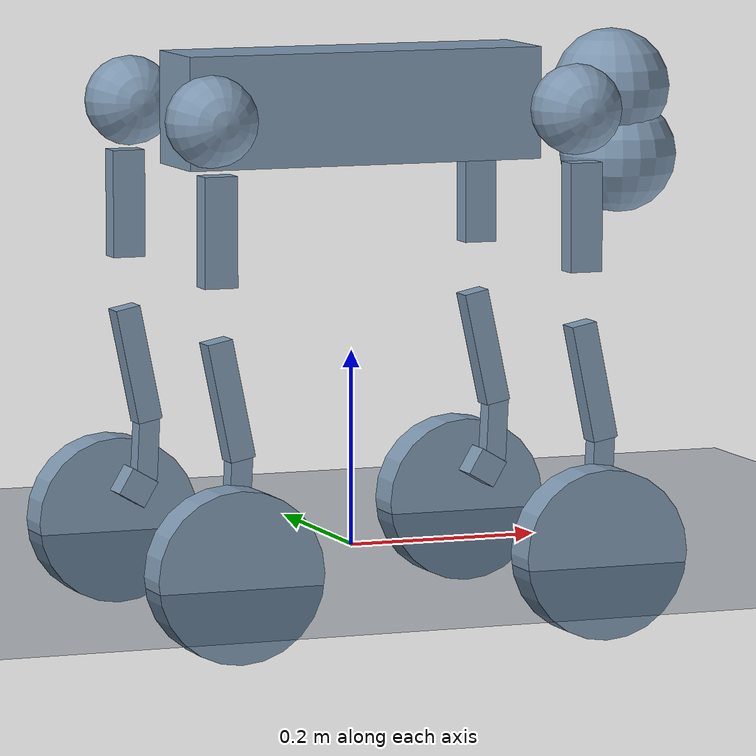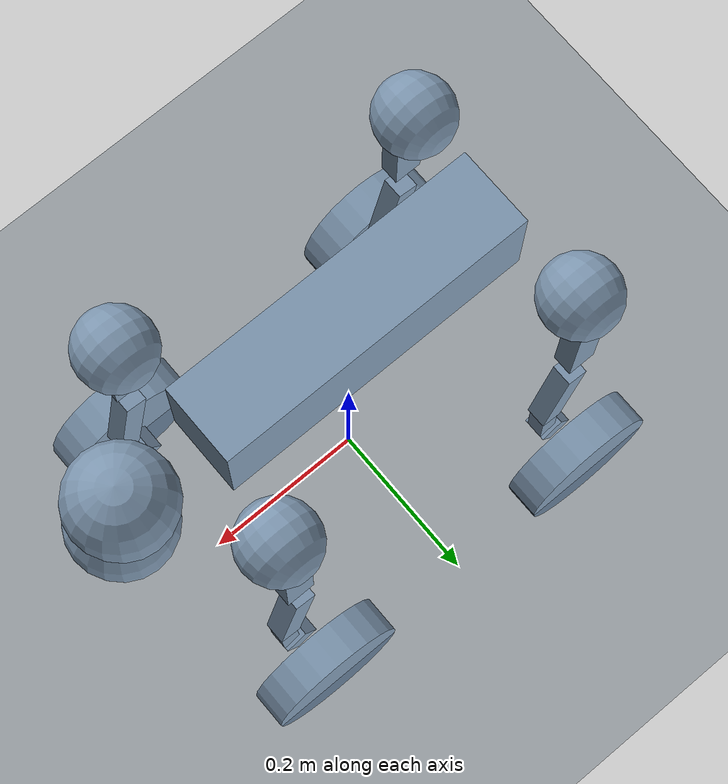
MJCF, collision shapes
<mujoco model="go2w">
  <compiler angle="radian" autolimits="true" meshdir="meshes" />
  <option timestep="0.005" integrator="implicitfast" />
  <default>
    <default class="collision">
      <geom group="3" contype="1" conaffinity="1" condim="3" friction="1.1 0.005 0.0001" rgba="0.5 0.6 0.7 0.4" />
    </default>
    <default class="visual">
      <geom group="2" contype="0" conaffinity="0" density="0" />
    </default>
  </default>
  <asset>
    <texture type="skybox" builtin="gradient" rgb1="0.3 0.5 0.7" rgb2="0 0 0" width="512" height="512" />
    <texture name="grid" type="2d" builtin="checker" rgb1="0.2 0.3 0.4" rgb2="0.1 0.15 0.2" width="512" height="512" />
    <material name="grid" texture="grid" texrepeat="4 4" reflectance="0.1" />
    <mesh name="base" file="base.stl" />
    <mesh name="calf" file="calf.stl" />
    <mesh name="calf_mirror" file="calf_mirror.stl" />
    <mesh name="hip" file="hip.stl" />
    <mesh name="left_wheel" file="left_wheel.stl" />
    <mesh name="right_wheel" file="right_wheel.stl" />
    <mesh name="thigh" file="thigh.stl" />
    <mesh name="thigh_mirror" file="thigh_mirror.stl" />
  </asset>
  <worldbody>
    <light pos="0 0 4" dir="0 0 -1" directional="true" />
    <geom name="floor" type="plane" size="0 0 0.05" material="grid" condim="3" friction="1.1 0.005 0.0001" />
    <body name="base" pos="0 0 0.45">
      <freejoint name="root" />
      <inertial pos="0.021112 0 -0.005366" mass="6.921" fullinertia="0.02448 0.098077 0.107 0.00012166 0.0014849 -3.12e-05" />
      <geom class="collision" pos="0 0 0" quat="1 0 0 0" type="box" size="0.1881 0.04675 0.057" />
      <geom class="visual" pos="0 0 0" quat="1 0 0 0" type="mesh" mesh="base" />
      <site name="imu" pos="0 0 0" size="0.01" />
      <body name="Head_upper" pos="0.285 0 0.01" quat="1 0 0 0">
        <inertial pos="0 0 0" mass="0.001" fullinertia="9.6e-06 9.6e-06 9.6e-06 0 0 0" />
        <geom class="collision" pos="0 0 0" quat="1 0 0 0" type="sphere" size="0.06" />
        <body name="Head_lower" pos="0.008 0 -0.07" quat="1 0 0 0">
          <inertial pos="0 0 0" mass="0.001" fullinertia="9.6e-06 9.6e-06 9.6e-06 0 0 0" />
          <geom class="collision" pos="0 0 0" quat="1 0 0 0" type="sphere" size="0.06" />
        </body>
      </body>
      <body name="FL_hip" pos="0.1934 0.0465 0" quat="1 0 0 0">
        <joint name="FL_hip_joint" axis="1 0 0" type="hinge" range="-1.0472 1.0472" damping="10.0" armature="0.01" />
        <inertial pos="-0.0054 0.00194 -0.000105" mass="0.678" fullinertia="0.00048 0.000884 0.000596 -3.01e-06 1.11e-06 -1.42e-06" />
        <geom class="collision" pos="0 0.08 0" quat="0.70710678 0.70710678 0 0" type="sphere" size="0.046" />
        <geom class="visual" pos="0 0 0" quat="1 0 0 0" type="mesh" mesh="hip" />
        <body name="FL_thigh" pos="0 0.0955 0" quat="1 0 0 0">
          <joint name="FL_thigh_joint" axis="0 1 0" type="hinge" range="-1.5707963267948966 3.4907" damping="10.0" armature="0.01" />
          <inertial pos="-0.00374 -0.0223 -0.0327" mass="1.152" fullinertia="0.00584 0.0058 0.00103 8.72e-05 -0.000289 0.000808" />
          <geom class="collision" pos="0 0 -0.1065" quat="0.70710678 0 0.70710678 0" type="box" size="0.055 0.01225 0.017" />
          <geom class="visual" pos="0 0 0" quat="1 0 0 0" type="mesh" mesh="thigh" />
          <body name="FL_calf" pos="0 0 -0.213" quat="1 0 0 0">
            <joint name="FL_calf_joint" axis="0 1 0" type="hinge" range="-2.7227 -0.83776" damping="10.0" armature="0.01" />
            <inertial pos="0.00548 -0.000975 -0.115" mass="0.154" fullinertia="0.00108 0.0011 3.29e-05 3.4e-07 1.72e-05 8.28e-06" />
            <geom class="collision" pos="0.008 0 -0.06" quat="0.99449256 0 -0.10480717 0" type="box" size="0.013 0.013 0.06" />
            <geom class="visual" pos="0 0 0" quat="1 0 0 0" type="mesh" mesh="calf" />
            <body name="FL_calflower" pos="0.02 0 -0.148" quat="0.99968752 0 0.024997396 0">
              <geom class="collision" pos="0 0 0" quat="1 0 0 0" type="box" size="0.011 0.011 0.0325" />
              <body name="FL_calflower1" pos="-0.01 0 -0.04" quat="0.97133797 0 0.23770263 0">
                <geom class="collision" pos="0 0 0" quat="1 0 0 0" type="box" size="0.0155 0.0155 0.015" />
              </body>
            </body>
            <body name="FL_foot_motor" pos="-0 0.01 -0.2264" quat="1 0 0 0">
              <inertial pos="0 0 0" mass="0.646" fullinertia="0.001 0.0016 0.001 0 0 0" />
            </body>
            <body name="FL_foot" pos="0 0 -0.2264" quat="1 0 0 0">
              <joint name="FL_foot_joint" axis="0 1 0" type="hinge" armature="0.01" />
              <inertial pos="0 0.06 0" mass="0.52" fullinertia="0.0007 0.0012 0.0007 0 0 0" />
              <geom class="collision" pos="0 0.048 0" quat="0.70710678 0.70710678 0 0" type="cylinder" size="0.086 0.0225" />
              <geom class="visual" pos="0 0 0" quat="1 0 0 0" type="mesh" mesh="left_wheel" />
            </body>
          </body>
        </body>
      </body>
      <body name="FR_hip" pos="0.1934 -0.0465 0" quat="1 0 0 0">
        <joint name="FR_hip_joint" axis="1 0 0" type="hinge" range="-1.0472 1.0472" damping="10.0" armature="0.01" />
        <inertial pos="-0.0054 -0.00194 -0.000105" mass="0.678" fullinertia="0.00048 0.000884 0.000596 3.01e-06 1.11e-06 1.42e-06" />
        <geom class="collision" pos="0 -0.08 0" quat="0.70710678 0.70710678 0 0" type="sphere" size="0.046" />
        <geom class="visual" pos="0 0 0" quat="4.6326795e-05 1 0 0" type="mesh" mesh="hip" />
        <body name="FR_thigh" pos="0 -0.0955 0" quat="1 0 0 0">
          <joint name="FR_thigh_joint" axis="0 1 0" type="hinge" range="-1.5707963267948966 3.4907" damping="10.0" armature="0.01" />
          <inertial pos="-0.00374 0.0223 -0.0327" mass="1.152" fullinertia="0.00584 0.0058 0.00103 -8.72e-05 -0.000289 -0.000808" />
          <geom class="collision" pos="0 0 -0.1065" quat="0.70710678 0 0.70710678 0" type="box" size="0.055 0.01225 0.017" />
          <geom class="visual" pos="0 0 0" quat="1 0 0 0" type="mesh" mesh="thigh_mirror" />
          <body name="FR_calf" pos="0 0 -0.213" quat="1 0 0 0">
            <joint name="FR_calf_joint" axis="0 1 0" type="hinge" range="-2.7227 -0.83776" damping="10.0" armature="0.01" />
            <inertial pos="0.00548 0.000975 -0.115" mass="0.154" fullinertia="0.00108 0.0011 3.29e-05 -3.4e-07 1.72e-05 -8.28e-06" />
            <geom class="collision" pos="0.01 0 -0.06" quat="0.99500417 0 -0.099833417 0" type="box" size="0.013 0.013 0.06" />
            <geom class="visual" pos="0 0 0" quat="1 0 0 0" type="mesh" mesh="calf_mirror" />
            <body name="FR_calflower" pos="0.02 0 -0.148" quat="0.99968752 0 0.024997396 0">
              <geom class="collision" pos="0 0 0" quat="1 0 0 0" type="box" size="0.011 0.011 0.0325" />
              <body name="FR_calflower1" pos="-0.01 0 -0.04" quat="0.97133797 0 0.23770263 0">
                <geom class="collision" pos="0 0 0" quat="1 0 0 0" type="box" size="0.0155 0.0155 0.015" />
              </body>
            </body>
            <body name="FR_foot_motor" pos="0 -0.01 -0.2264" quat="1 0 0 0">
              <inertial pos="0 0 0" mass="0.646" fullinertia="0.001 0.0016 0.001 0 0 0" />
            </body>
            <body name="FR_foot" pos="0 0 -0.2264" quat="1 0 0 0">
              <joint name="FR_foot_joint" axis="0 1 0" type="hinge" armature="0.01" />
              <inertial pos="0 -0.06 0" mass="0.52" fullinertia="0.0007 0.0012 0.0007 0 0 0" />
              <geom class="collision" pos="0 -0.048 0" quat="0.70710678 0.70710678 0 0" type="cylinder" size="0.086 0.0225" />
              <geom class="visual" pos="0 0 0" quat="1 0 0 0" type="mesh" mesh="right_wheel" />
            </body>
          </body>
        </body>
      </body>
      <body name="RL_hip" pos="-0.1934 0.0465 0" quat="1 0 0 0">
        <joint name="RL_hip_joint" axis="1 0 0" type="hinge" range="-1.0472 1.0472" damping="10.0" armature="0.01" />
        <inertial pos="0.0054 0.00194 -0.000105" mass="0.678" fullinertia="0.00048 0.000884 0.000596 3.01e-06 -1.11e-06 -1.42e-06" />
        <geom class="collision" pos="0 0.08 0" quat="0.70710678 0.70710678 0 0" type="sphere" size="0.046" />
        <geom class="visual" pos="0 0 0" quat="4.6326795e-05 0 1 0" type="mesh" mesh="hip" />
        <body name="RL_thigh" pos="0 0.0955 0" quat="1 0 0 0">
          <joint name="RL_thigh_joint" axis="0 1 0" type="hinge" range="-0.5236 4.5379" damping="10.0" armature="0.01" />
          <inertial pos="-0.00374 -0.0223 -0.0327" mass="1.152" fullinertia="0.00584 0.0058 0.00103 8.72e-05 -0.000289 0.000808" />
          <geom class="collision" pos="0 0 -0.1065" quat="0.70710678 0 0.70710678 0" type="box" size="0.055 0.01225 0.017" />
          <geom class="visual" pos="0 0 0" quat="1 0 0 0" type="mesh" mesh="thigh" />
          <body name="RL_calf" pos="0 0 -0.213" quat="1 0 0 0">
            <joint name="RL_calf_joint" axis="0 1 0" type="hinge" range="-2.7227 -0.83776" damping="10.0" armature="0.01" />
            <inertial pos="0.00548 -0.000975 -0.115" mass="0.154" fullinertia="0.00108 0.0011 3.29e-05 3.4e-07 1.72e-05 8.28e-06" />
            <geom class="collision" pos="0.01 0 -0.06" quat="0.99500417 0 -0.099833417 0" type="box" size="0.013 0.013 0.06" />
            <geom class="visual" pos="0 0 0" quat="1 0 0 0" type="mesh" mesh="calf" />
            <body name="RL_calflower" pos="0.02 0 -0.148" quat="0.99968752 0 0.024997396 0">
              <geom class="collision" pos="0 0 0" quat="1 0 0 0" type="box" size="0.011 0.011 0.0325" />
              <body name="RL_calflower1" pos="-0.01 0 -0.04" quat="0.97133797 0 0.23770263 0">
                <geom class="collision" pos="0 0 0" quat="1 0 0 0" type="box" size="0.0155 0.0155 0.015" />
              </body>
            </body>
            <body name="RL_foot_motor" pos="0 0.01 -0.2264" quat="1 0 0 0">
              <inertial pos="0 0 0" mass="0.646" fullinertia="0.001 0.0016 0.001 0 0 0" />
            </body>
            <body name="RL_foot" pos="0 0 -0.2264" quat="1 0 0 0">
              <joint name="RL_foot_joint" axis="0 1 0" type="hinge" armature="0.01" />
              <inertial pos="0 0.06 0" mass="0.52" fullinertia="0.0007 0.0012 0.0007 0 0 0" />
              <geom class="collision" pos="0 0.048 0" quat="0.70710678 0.70710678 0 0" type="cylinder" size="0.086 0.0225" />
              <geom class="visual" pos="0 0 0" quat="1 0 0 0" type="mesh" mesh="left_wheel" />
            </body>
          </body>
        </body>
      </body>
      <body name="RR_hip" pos="-0.1934 -0.0465 0" quat="1 0 0 0">
        <joint name="RR_hip_joint" axis="1 0 0" type="hinge" range="-1.0472 1.0472" damping="10.0" armature="0.01" />
        <inertial pos="0.0054 -0.00194 -0.000105" mass="0.678" fullinertia="0.00048 0.000884 0.000596 -3.01e-06 -1.11e-06 1.42e-06" />
        <geom class="collision" pos="0 -0.08 0" quat="0.70710678 0.70710678 0 0" type="sphere" size="0.046" />
        <geom class="visual" pos="0 0 0" quat="2.1461719e-09 4.6326795e-05 4.6326795e-05 -1" type="mesh" mesh="hip" />
        <body name="RR_thigh" pos="0 -0.0955 0" quat="1 0 0 0">
          <joint name="RR_thigh_joint" axis="0 1 0" type="hinge" range="-0.5236 4.5379" damping="10.0" armature="0.01" />
          <inertial pos="-0.00374 0.0223 -0.0327" mass="1.152" fullinertia="0.00584 0.0058 0.00103 -8.72e-05 -0.000289 -0.000808" />
          <geom class="collision" pos="0 0 -0.1065" quat="0.70710678 0 0.70710678 0" type="box" size="0.055 0.01225 0.017" />
          <geom class="visual" pos="0 0 0" quat="1 0 0 0" type="mesh" mesh="thigh_mirror" />
          <body name="RR_calf" pos="0 0 -0.213" quat="1 0 0 0">
            <joint name="RR_calf_joint" axis="0 1 0" type="hinge" range="-2.7227 -0.83776" damping="10.0" armature="0.01" />
            <inertial pos="0.00548 0.000975 -0.115" mass="0.154" fullinertia="0.00108 0.0011 3.29e-05 -3.4e-07 1.72e-05 -8.28e-06" />
            <geom class="collision" pos="0.01 0 -0.06" quat="0.99500417 0 -0.099833417 0" type="box" size="0.013 0.013 0.06" />
            <geom class="visual" pos="0 0 0" quat="1 0 0 0" type="mesh" mesh="calf_mirror" />
            <body name="RR_calflower" pos="0.02 0 -0.148" quat="0.99968752 0 0.024997396 0">
              <geom class="collision" pos="0 0 0" quat="1 0 0 0" type="box" size="0.011 0.011 0.0325" />
              <body name="RR_calflower1" pos="-0.01 0 -0.04" quat="0.97133797 0 0.23770263 0">
                <geom class="collision" pos="0 0 0" quat="1 0 0 0" type="box" size="0.0155 0.0155 0.015" />
              </body>
            </body>
            <body name="RR_foot_motor" pos="0 -0.01 -0.2264" quat="1 0 0 0">
              <inertial pos="0 0 0" mass="0.646" fullinertia="0.001 0.0016 0.001 0 0 0" />
            </body>
            <body name="RR_foot" pos="-0 0 -0.2264" quat="1 0 0 0">
              <joint name="RR_foot_joint" axis="0 1 0" type="hinge" armature="0.01" />
              <inertial pos="0 -0.06 0" mass="0.52" fullinertia="0.0007 0.0012 0.0007 0 0 0" />
              <geom class="collision" pos="0 -0.048 0" quat="0.70710678 0.70710678 0 0" type="cylinder" size="0.086 0.0225" />
              <geom class="visual" pos="0 0 0" quat="1 0 0 0" type="mesh" mesh="right_wheel" />
            </body>
          </body>
        </body>
      </body>
      <body name="imu" pos="-0.02557 0 0.04232" quat="1 0 0 0" />
      <body name="radar" pos="0.28945 0 -0.046825" quat="0.13131597 0 0.99134057 0" />
    </body>
  </worldbody>
  <actuator>
    <position name="act_FR_hip_joint" joint="FR_hip_joint" kp="70.0" forcerange="-23.5 23.5" />
    <position name="act_FR_thigh_joint" joint="FR_thigh_joint" kp="70.0" forcerange="-23.5 23.5" />
    <position name="act_FR_calf_joint" joint="FR_calf_joint" kp="70.0" forcerange="-23.5 23.5" />
    <position name="act_FL_hip_joint" joint="FL_hip_joint" kp="70.0" forcerange="-23.5 23.5" />
    <position name="act_FL_thigh_joint" joint="FL_thigh_joint" kp="70.0" forcerange="-23.5 23.5" />
    <position name="act_FL_calf_joint" joint="FL_calf_joint" kp="70.0" forcerange="-23.5 23.5" />
    <position name="act_RR_hip_joint" joint="RR_hip_joint" kp="70.0" forcerange="-23.5 23.5" />
    <position name="act_RR_thigh_joint" joint="RR_thigh_joint" kp="70.0" forcerange="-23.5 23.5" />
    <position name="act_RR_calf_joint" joint="RR_calf_joint" kp="70.0" forcerange="-23.5 23.5" />
    <position name="act_RL_hip_joint" joint="RL_hip_joint" kp="70.0" forcerange="-23.5 23.5" />
    <position name="act_RL_thigh_joint" joint="RL_thigh_joint" kp="70.0" forcerange="-23.5 23.5" />
    <position name="act_RL_calf_joint" joint="RL_calf_joint" kp="70.0" forcerange="-23.5 23.5" />
    <velocity name="act_FR_foot_joint" joint="FR_foot_joint" kv="0.5" forcerange="-23.5 23.5" />
    <velocity name="act_FL_foot_joint" joint="FL_foot_joint" kv="0.5" forcerange="-23.5 23.5" />
    <velocity name="act_RR_foot_joint" joint="RR_foot_joint" kv="0.5" forcerange="-23.5 23.5" />
    <velocity name="act_RL_foot_joint" joint="RL_foot_joint" kv="0.5" forcerange="-23.5 23.5" />
  </actuator>
  <sensor>
    <gyro name="imu_gyro" site="imu" />
    <velocimeter name="imu_vel" site="imu" />
    <framequat name="base_quat" objtype="site" objname="imu" />
    <framepos name="base_pos" objtype="site" objname="imu" />
  </sensor>
  <keyframe>
    <key name="home" qpos="0 0 0.45 1 0 0 0 0 0.8 -1.5 0 0 0.8 -1.5 0 0 0.8 -1.5 0 0 0.8 -1.5 0" />
  </keyframe>
</mujoco>
